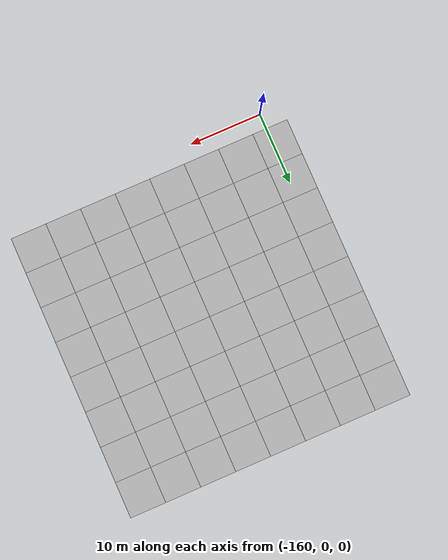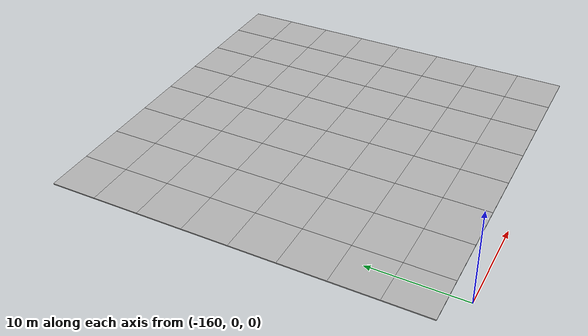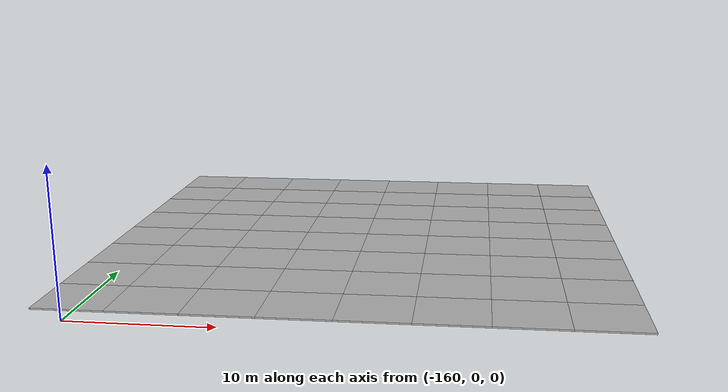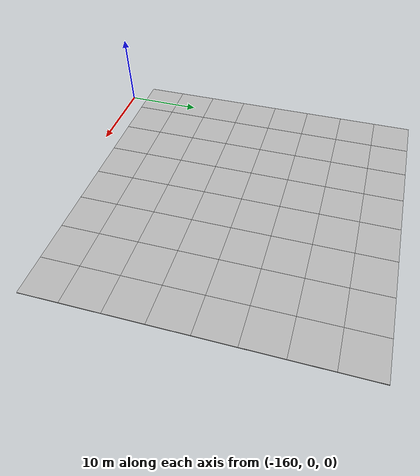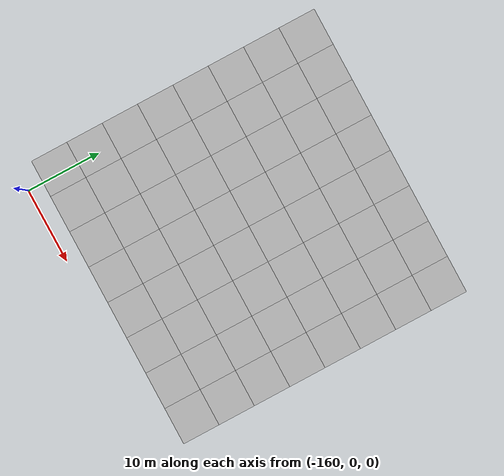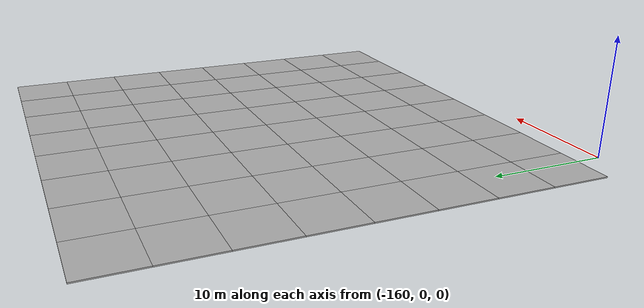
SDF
<sdf version="1.7">
 <world name="default">
  <model name="mud_plane_80x80_3">
   <model name="mud_plane_40x40_2">
    <model name="mud_plane_20x20">
     <model name="mud_plane">
      <static>1</static>
      <link name="link">
       <collision name="collision"><geometry><box><size>10 10 0.1</size></box></geometry></collision>
       <visual name="visual_1">
        <pose>-2.5 2.5 -0.05 0 -0 0</pose>
        <cast_shadows>0</cast_shadows>
        <geometry><box><size>5 5 0.1</size></box></geometry>
        <material>
         <script>
          <uri>model://mud_plane/materials/scripts</uri>
          <uri>model://mud_plane/materials/textures</uri>
          <name>vrc/mud</name>
         </script>
        </material>
       </visual>
       <visual name="visual_2">
        <pose>2.5 2.5 -0.05 0 -0 0</pose>
        <cast_shadows>0</cast_shadows>
        <geometry><box><size>5 5 0.1</size></box></geometry>
        <material>
         <script>
          <uri>model://mud_plane/materials/scripts</uri>
          <uri>model://mud_plane/materials/textures</uri>
          <name>vrc/mud</name>
         </script>
        </material>
       </visual>
       <visual name="visual_3">
        <pose>2.5 -2.5 -0.05 0 -0 0</pose>
        <cast_shadows>0</cast_shadows>
        <geometry><box><size>5 5 0.1</size></box></geometry>
        <material>
         <script>
          <uri>model://mud_plane/materials/scripts</uri>
          <uri>model://mud_plane/materials/textures</uri>
          <name>vrc/mud</name>
         </script>
        </material>
       </visual>
       <visual name="visual_4">
        <pose>-2.5 -2.5 -0.05 0 -0 0</pose>
        <cast_shadows>0</cast_shadows>
        <geometry><box><size>5 5 0.1</size></box></geometry>
        <material>
         <script>
          <uri>model://mud_plane/materials/scripts</uri>
          <uri>model://mud_plane/materials/textures</uri>
          <name>vrc/mud</name>
         </script>
        </material>
       </visual>
      </link>
      <pose>-4.99986 -4.99991 0 0 -0 0</pose>
     </model>
     <model name="mud_plane_0">
      <static>1</static>
      <link name="link">
       <collision name="collision"><geometry><box><size>10 10 0.1</size></box></geometry></collision>
       <visual name="visual_1">
        <pose>-2.5 2.5 -0.05 0 -0 0</pose>
        <cast_shadows>0</cast_shadows>
        <geometry><box><size>5 5 0.1</size></box></geometry>
        <material>
         <script>
          <uri>model://mud_plane/materials/scripts</uri>
          <uri>model://mud_plane/materials/textures</uri>
          <name>vrc/mud</name>
         </script>
        </material>
       </visual>
       <visual name="visual_2">
        <pose>2.5 2.5 -0.05 0 -0 0</pose>
        <cast_shadows>0</cast_shadows>
        <geometry><box><size>5 5 0.1</size></box></geometry>
        <material>
         <script>
          <uri>model://mud_plane/materials/scripts</uri>
          <uri>model://mud_plane/materials/textures</uri>
          <name>vrc/mud</name>
         </script>
        </material>
       </visual>
       <visual name="visual_3">
        <pose>2.5 -2.5 -0.05 0 -0 0</pose>
        <cast_shadows>0</cast_shadows>
        <geometry><box><size>5 5 0.1</size></box></geometry>
        <material>
         <script>
          <uri>model://mud_plane/materials/scripts</uri>
          <uri>model://mud_plane/materials/textures</uri>
          <name>vrc/mud</name>
         </script>
        </material>
       </visual>
       <visual name="visual_4">
        <pose>-2.5 -2.5 -0.05 0 -0 0</pose>
        <cast_shadows>0</cast_shadows>
        <geometry><box><size>5 5 0.1</size></box></geometry>
        <material>
         <script>
          <uri>model://mud_plane/materials/scripts</uri>
          <uri>model://mud_plane/materials/textures</uri>
          <name>vrc/mud</name>
         </script>
        </material>
       </visual>
      </link>
      <pose>-4.99946 4.99954 0 0 -0 0</pose>
     </model>
     <model name="mud_plane_1">
      <static>1</static>
      <link name="link">
       <collision name="collision"><geometry><box><size>10 10 0.1</size></box></geometry></collision>
       <visual name="visual_1">
        <pose>-2.5 2.5 -0.05 0 -0 0</pose>
        <cast_shadows>0</cast_shadows>
        <geometry><box><size>5 5 0.1</size></box></geometry>
        <material>
         <script>
          <uri>model://mud_plane/materials/scripts</uri>
          <uri>model://mud_plane/materials/textures</uri>
          <name>vrc/mud</name>
         </script>
        </material>
       </visual>
       <visual name="visual_2">
        <pose>2.5 2.5 -0.05 0 -0 0</pose>
        <cast_shadows>0</cast_shadows>
        <geometry><box><size>5 5 0.1</size></box></geometry>
        <material>
         <script>
          <uri>model://mud_plane/materials/scripts</uri>
          <uri>model://mud_plane/materials/textures</uri>
          <name>vrc/mud</name>
         </script>
        </material>
       </visual>
       <visual name="visual_3">
        <pose>2.5 -2.5 -0.05 0 -0 0</pose>
        <cast_shadows>0</cast_shadows>
        <geometry><box><size>5 5 0.1</size></box></geometry>
        <material>
         <script>
          <uri>model://mud_plane/materials/scripts</uri>
          <uri>model://mud_plane/materials/textures</uri>
          <name>vrc/mud</name>
         </script>
        </material>
       </visual>
       <visual name="visual_4">
        <pose>-2.5 -2.5 -0.05 0 -0 0</pose>
        <cast_shadows>0</cast_shadows>
        <geometry><box><size>5 5 0.1</size></box></geometry>
        <material>
         <script>
          <uri>model://mud_plane/materials/scripts</uri>
          <uri>model://mud_plane/materials/textures</uri>
          <name>vrc/mud</name>
         </script>
        </material>
       </visual>
      </link>
      <pose>4.99964 -4.99949 0 0 -0 0</pose>
     </model>
     <model name="mud_plane_2">
      <static>1</static>
      <link name="link">
       <collision name="collision"><geometry><box><size>10 10 0.1</size></box></geometry></collision>
       <visual name="visual_1">
        <pose>-2.5 2.5 -0.05 0 -0 0</pose>
        <cast_shadows>0</cast_shadows>
        <geometry><box><size>5 5 0.1</size></box></geometry>
        <material>
         <script>
          <uri>model://mud_plane/materials/scripts</uri>
          <uri>model://mud_plane/materials/textures</uri>
          <name>vrc/mud</name>
         </script>
        </material>
       </visual>
       <visual name="visual_2">
        <pose>2.5 2.5 -0.05 0 -0 0</pose>
        <cast_shadows>0</cast_shadows>
        <geometry><box><size>5 5 0.1</size></box></geometry>
        <material>
         <script>
          <uri>model://mud_plane/materials/scripts</uri>
          <uri>model://mud_plane/materials/textures</uri>
          <name>vrc/mud</name>
         </script>
        </material>
       </visual>
       <visual name="visual_3">
        <pose>2.5 -2.5 -0.05 0 -0 0</pose>
        <cast_shadows>0</cast_shadows>
        <geometry><box><size>5 5 0.1</size></box></geometry>
        <material>
         <script>
          <uri>model://mud_plane/materials/scripts</uri>
          <uri>model://mud_plane/materials/textures</uri>
          <name>vrc/mud</name>
         </script>
        </material>
       </visual>
       <visual name="visual_4">
        <pose>-2.5 -2.5 -0.05 0 -0 0</pose>
        <cast_shadows>0</cast_shadows>
        <geometry><box><size>5 5 0.1</size></box></geometry>
        <material>
         <script>
          <uri>model://mud_plane/materials/scripts</uri>
          <uri>model://mud_plane/materials/textures</uri>
          <name>vrc/mud</name>
         </script>
        </material>
       </visual>
      </link>
      <pose>4.99967 4.99986 0 0 -0 0</pose>
     </model>
     <static>0</static>
     <pose>-9.99895 9.99843 0 0 -0 0</pose>
    </model>
    <model name="mud_plane_20x20_0">
     <model name="mud_plane">
      <static>1</static>
      <link name="link">
       <collision name="collision"><geometry><box><size>10 10 0.1</size></box></geometry></collision>
       <visual name="visual_1">
        <pose>-2.5 2.5 -0.05 0 -0 0</pose>
        <cast_shadows>0</cast_shadows>
        <geometry><box><size>5 5 0.1</size></box></geometry>
        <material>
         <script>
          <uri>model://mud_plane/materials/scripts</uri>
          <uri>model://mud_plane/materials/textures</uri>
          <name>vrc/mud</name>
         </script>
        </material>
       </visual>
       <visual name="visual_2">
        <pose>2.5 2.5 -0.05 0 -0 0</pose>
        <cast_shadows>0</cast_shadows>
        <geometry><box><size>5 5 0.1</size></box></geometry>
        <material>
         <script>
          <uri>model://mud_plane/materials/scripts</uri>
          <uri>model://mud_plane/materials/textures</uri>
          <name>vrc/mud</name>
         </script>
        </material>
       </visual>
       <visual name="visual_3">
        <pose>2.5 -2.5 -0.05 0 -0 0</pose>
        <cast_shadows>0</cast_shadows>
        <geometry><box><size>5 5 0.1</size></box></geometry>
        <material>
         <script>
          <uri>model://mud_plane/materials/scripts</uri>
          <uri>model://mud_plane/materials/textures</uri>
          <name>vrc/mud</name>
         </script>
        </material>
       </visual>
       <visual name="visual_4">
        <pose>-2.5 -2.5 -0.05 0 -0 0</pose>
        <cast_shadows>0</cast_shadows>
        <geometry><box><size>5 5 0.1</size></box></geometry>
        <material>
         <script>
          <uri>model://mud_plane/materials/scripts</uri>
          <uri>model://mud_plane/materials/textures</uri>
          <name>vrc/mud</name>
         </script>
        </material>
       </visual>
      </link>
      <pose>-4.99986 -4.99991 0 0 -0 0</pose>
     </model>
     <model name="mud_plane_0">
      <static>1</static>
      <link name="link">
       <collision name="collision"><geometry><box><size>10 10 0.1</size></box></geometry></collision>
       <visual name="visual_1">
        <pose>-2.5 2.5 -0.05 0 -0 0</pose>
        <cast_shadows>0</cast_shadows>
        <geometry><box><size>5 5 0.1</size></box></geometry>
        <material>
         <script>
          <uri>model://mud_plane/materials/scripts</uri>
          <uri>model://mud_plane/materials/textures</uri>
          <name>vrc/mud</name>
         </script>
        </material>
       </visual>
       <visual name="visual_2">
        <pose>2.5 2.5 -0.05 0 -0 0</pose>
        <cast_shadows>0</cast_shadows>
        <geometry><box><size>5 5 0.1</size></box></geometry>
        <material>
         <script>
          <uri>model://mud_plane/materials/scripts</uri>
          <uri>model://mud_plane/materials/textures</uri>
          <name>vrc/mud</name>
         </script>
        </material>
       </visual>
       <visual name="visual_3">
        <pose>2.5 -2.5 -0.05 0 -0 0</pose>
        <cast_shadows>0</cast_shadows>
        <geometry><box><size>5 5 0.1</size></box></geometry>
        <material>
         <script>
          <uri>model://mud_plane/materials/scripts</uri>
          <uri>model://mud_plane/materials/textures</uri>
          <name>vrc/mud</name>
         </script>
        </material>
       </visual>
       <visual name="visual_4">
        <pose>-2.5 -2.5 -0.05 0 -0 0</pose>
        <cast_shadows>0</cast_shadows>
        <geometry><box><size>5 5 0.1</size></box></geometry>
        <material>
         <script>
          <uri>model://mud_plane/materials/scripts</uri>
          <uri>model://mud_plane/materials/textures</uri>
          <name>vrc/mud</name>
         </script>
        </material>
       </visual>
      </link>
      <pose>-4.99946 4.99954 0 0 -0 0</pose>
     </model>
     <model name="mud_plane_1">
      <static>1</static>
      <link name="link">
       <collision name="collision"><geometry><box><size>10 10 0.1</size></box></geometry></collision>
       <visual name="visual_1">
        <pose>-2.5 2.5 -0.05 0 -0 0</pose>
        <cast_shadows>0</cast_shadows>
        <geometry><box><size>5 5 0.1</size></box></geometry>
        <material>
         <script>
          <uri>model://mud_plane/materials/scripts</uri>
          <uri>model://mud_plane/materials/textures</uri>
          <name>vrc/mud</name>
         </script>
        </material>
       </visual>
       <visual name="visual_2">
        <pose>2.5 2.5 -0.05 0 -0 0</pose>
        <cast_shadows>0</cast_shadows>
        <geometry><box><size>5 5 0.1</size></box></geometry>
        <material>
         <script>
          <uri>model://mud_plane/materials/scripts</uri>
          <uri>model://mud_plane/materials/textures</uri>
          <name>vrc/mud</name>
         </script>
        </material>
       </visual>
       <visual name="visual_3">
        <pose>2.5 -2.5 -0.05 0 -0 0</pose>
        <cast_shadows>0</cast_shadows>
        <geometry><box><size>5 5 0.1</size></box></geometry>
        <material>
         <script>
          <uri>model://mud_plane/materials/scripts</uri>
          <uri>model://mud_plane/materials/textures</uri>
          <name>vrc/mud</name>
         </script>
        </material>
       </visual>
       <visual name="visual_4">
        <pose>-2.5 -2.5 -0.05 0 -0 0</pose>
        <cast_shadows>0</cast_shadows>
        <geometry><box><size>5 5 0.1</size></box></geometry>
        <material>
         <script>
          <uri>model://mud_plane/materials/scripts</uri>
          <uri>model://mud_plane/materials/textures</uri>
          <name>vrc/mud</name>
         </script>
        </material>
       </visual>
      </link>
      <pose>4.99964 -4.99949 0 0 -0 0</pose>
     </model>
     <model name="mud_plane_2">
      <static>1</static>
      <link name="link">
       <collision name="collision"><geometry><box><size>10 10 0.1</size></box></geometry></collision>
       <visual name="visual_1">
        <pose>-2.5 2.5 -0.05 0 -0 0</pose>
        <cast_shadows>0</cast_shadows>
        <geometry><box><size>5 5 0.1</size></box></geometry>
        <material>
         <script>
          <uri>model://mud_plane/materials/scripts</uri>
          <uri>model://mud_plane/materials/textures</uri>
          <name>vrc/mud</name>
         </script>
        </material>
       </visual>
       <visual name="visual_2">
        <pose>2.5 2.5 -0.05 0 -0 0</pose>
        <cast_shadows>0</cast_shadows>
        <geometry><box><size>5 5 0.1</size></box></geometry>
        <material>
         <script>
          <uri>model://mud_plane/materials/scripts</uri>
          <uri>model://mud_plane/materials/textures</uri>
          <name>vrc/mud</name>
         </script>
        </material>
       </visual>
       <visual name="visual_3">
        <pose>2.5 -2.5 -0.05 0 -0 0</pose>
        <cast_shadows>0</cast_shadows>
        <geometry><box><size>5 5 0.1</size></box></geometry>
        <material>
         <script>
          <uri>model://mud_plane/materials/scripts</uri>
          <uri>model://mud_plane/materials/textures</uri>
          <name>vrc/mud</name>
         </script>
        </material>
       </visual>
       <visual name="visual_4">
        <pose>-2.5 -2.5 -0.05 0 -0 0</pose>
        <cast_shadows>0</cast_shadows>
        <geometry><box><size>5 5 0.1</size></box></geometry>
        <material>
         <script>
          <uri>model://mud_plane/materials/scripts</uri>
          <uri>model://mud_plane/materials/textures</uri>
          <name>vrc/mud</name>
         </script>
        </material>
       </visual>
      </link>
      <pose>4.99967 4.99986 0 0 -0 0</pose>
     </model>
     <static>0</static>
     <pose>9.99933 9.9997 0 0 -0 0</pose>
    </model>
    <model name="mud_plane_20x20_1">
     <model name="mud_plane">
      <static>1</static>
      <link name="link">
       <collision name="collision"><geometry><box><size>10 10 0.1</size></box></geometry></collision>
       <visual name="visual_1">
        <pose>-2.5 2.5 -0.05 0 -0 0</pose>
        <cast_shadows>0</cast_shadows>
        <geometry><box><size>5 5 0.1</size></box></geometry>
        <material>
         <script>
          <uri>model://mud_plane/materials/scripts</uri>
          <uri>model://mud_plane/materials/textures</uri>
          <name>vrc/mud</name>
         </script>
        </material>
       </visual>
       <visual name="visual_2">
        <pose>2.5 2.5 -0.05 0 -0 0</pose>
        <cast_shadows>0</cast_shadows>
        <geometry><box><size>5 5 0.1</size></box></geometry>
        <material>
         <script>
          <uri>model://mud_plane/materials/scripts</uri>
          <uri>model://mud_plane/materials/textures</uri>
          <name>vrc/mud</name>
         </script>
        </material>
       </visual>
       <visual name="visual_3">
        <pose>2.5 -2.5 -0.05 0 -0 0</pose>
        <cast_shadows>0</cast_shadows>
        <geometry><box><size>5 5 0.1</size></box></geometry>
        <material>
         <script>
          <uri>model://mud_plane/materials/scripts</uri>
          <uri>model://mud_plane/materials/textures</uri>
          <name>vrc/mud</name>
         </script>
        </material>
       </visual>
       <visual name="visual_4">
        <pose>-2.5 -2.5 -0.05 0 -0 0</pose>
        <cast_shadows>0</cast_shadows>
        <geometry><box><size>5 5 0.1</size></box></geometry>
        <material>
         <script>
          <uri>model://mud_plane/materials/scripts</uri>
          <uri>model://mud_plane/materials/textures</uri>
          <name>vrc/mud</name>
         </script>
        </material>
       </visual>
      </link>
      <pose>-4.99986 -4.99991 0 0 -0 0</pose>
     </model>
     <model name="mud_plane_0">
      <static>1</static>
      <link name="link">
       <collision name="collision"><geometry><box><size>10 10 0.1</size></box></geometry></collision>
       <visual name="visual_1">
        <pose>-2.5 2.5 -0.05 0 -0 0</pose>
        <cast_shadows>0</cast_shadows>
        <geometry><box><size>5 5 0.1</size></box></geometry>
        <material>
         <script>
          <uri>model://mud_plane/materials/scripts</uri>
          <uri>model://mud_plane/materials/textures</uri>
          <name>vrc/mud</name>
         </script>
        </material>
       </visual>
       <visual name="visual_2">
        <pose>2.5 2.5 -0.05 0 -0 0</pose>
        <cast_shadows>0</cast_shadows>
        <geometry><box><size>5 5 0.1</size></box></geometry>
        <material>
         <script>
          <uri>model://mud_plane/materials/scripts</uri>
          <uri>model://mud_plane/materials/textures</uri>
          <name>vrc/mud</name>
         </script>
        </material>
       </visual>
       <visual name="visual_3">
        <pose>2.5 -2.5 -0.05 0 -0 0</pose>
        <cast_shadows>0</cast_shadows>
        <geometry><box><size>5 5 0.1</size></box></geometry>
        <material>
         <script>
          <uri>model://mud_plane/materials/scripts</uri>
          <uri>model://mud_plane/materials/textures</uri>
          <name>vrc/mud</name>
         </script>
        </material>
       </visual>
       <visual name="visual_4">
        <pose>-2.5 -2.5 -0.05 0 -0 0</pose>
        <cast_shadows>0</cast_shadows>
        <geometry><box><size>5 5 0.1</size></box></geometry>
        <material>
         <script>
          <uri>model://mud_plane/materials/scripts</uri>
          <uri>model://mud_plane/materials/textures</uri>
          <name>vrc/mud</name>
         </script>
        </material>
       </visual>
      </link>
      <pose>-4.99946 4.99954 0 0 -0 0</pose>
     </model>
     <model name="mud_plane_1">
      <static>1</static>
      <link name="link">
       <collision name="collision"><geometry><box><size>10 10 0.1</size></box></geometry></collision>
       <visual name="visual_1">
        <pose>-2.5 2.5 -0.05 0 -0 0</pose>
        <cast_shadows>0</cast_shadows>
        <geometry><box><size>5 5 0.1</size></box></geometry>
        <material>
         <script>
          <uri>model://mud_plane/materials/scripts</uri>
          <uri>model://mud_plane/materials/textures</uri>
          <name>vrc/mud</name>
         </script>
        </material>
       </visual>
       <visual name="visual_2">
        <pose>2.5 2.5 -0.05 0 -0 0</pose>
        <cast_shadows>0</cast_shadows>
        <geometry><box><size>5 5 0.1</size></box></geometry>
        <material>
         <script>
          <uri>model://mud_plane/materials/scripts</uri>
          <uri>model://mud_plane/materials/textures</uri>
          <name>vrc/mud</name>
         </script>
        </material>
       </visual>
       <visual name="visual_3">
        <pose>2.5 -2.5 -0.05 0 -0 0</pose>
        <cast_shadows>0</cast_shadows>
        <geometry><box><size>5 5 0.1</size></box></geometry>
        <material>
         <script>
          <uri>model://mud_plane/materials/scripts</uri>
          <uri>model://mud_plane/materials/textures</uri>
          <name>vrc/mud</name>
         </script>
        </material>
       </visual>
       <visual name="visual_4">
        <pose>-2.5 -2.5 -0.05 0 -0 0</pose>
        <cast_shadows>0</cast_shadows>
        <geometry><box><size>5 5 0.1</size></box></geometry>
        <material>
         <script>
          <uri>model://mud_plane/materials/scripts</uri>
          <uri>model://mud_plane/materials/textures</uri>
          <name>vrc/mud</name>
         </script>
        </material>
       </visual>
      </link>
      <pose>4.99964 -4.99949 0 0 -0 0</pose>
     </model>
     <model name="mud_plane_2">
      <static>1</static>
      <link name="link">
       <collision name="collision"><geometry><box><size>10 10 0.1</size></box></geometry></collision>
       <visual name="visual_1">
        <pose>-2.5 2.5 -0.05 0 -0 0</pose>
        <cast_shadows>0</cast_shadows>
        <geometry><box><size>5 5 0.1</size></box></geometry>
        <material>
         <script>
          <uri>model://mud_plane/materials/scripts</uri>
          <uri>model://mud_plane/materials/textures</uri>
          <name>vrc/mud</name>
         </script>
        </material>
       </visual>
       <visual name="visual_2">
        <pose>2.5 2.5 -0.05 0 -0 0</pose>
        <cast_shadows>0</cast_shadows>
        <geometry><box><size>5 5 0.1</size></box></geometry>
        <material>
         <script>
          <uri>model://mud_plane/materials/scripts</uri>
          <uri>model://mud_plane/materials/textures</uri>
          <name>vrc/mud</name>
         </script>
        </material>
       </visual>
       <visual name="visual_3">
        <pose>2.5 -2.5 -0.05 0 -0 0</pose>
        <cast_shadows>0</cast_shadows>
        <geometry><box><size>5 5 0.1</size></box></geometry>
        <material>
         <script>
          <uri>model://mud_plane/materials/scripts</uri>
          <uri>model://mud_plane/materials/textures</uri>
          <name>vrc/mud</name>
         </script>
        </material>
       </visual>
       <visual name="visual_4">
        <pose>-2.5 -2.5 -0.05 0 -0 0</pose>
        <cast_shadows>0</cast_shadows>
        <geometry><box><size>5 5 0.1</size></box></geometry>
        <material>
         <script>
          <uri>model://mud_plane/materials/scripts</uri>
          <uri>model://mud_plane/materials/textures</uri>
          <name>vrc/mud</name>
         </script>
        </material>
       </visual>
      </link>
      <pose>4.99967 4.99986 0 0 -0 0</pose>
     </model>
     <static>0</static>
     <pose>9.9993 -9.99877 0 0 -0 0</pose>
    </model>
    <model name="mud_plane_20x20_2">
     <model name="mud_plane">
      <static>1</static>
      <link name="link">
       <collision name="collision"><geometry><box><size>10 10 0.1</size></box></geometry></collision>
       <visual name="visual_1">
        <pose>-2.5 2.5 -0.05 0 -0 0</pose>
        <cast_shadows>0</cast_shadows>
        <geometry><box><size>5 5 0.1</size></box></geometry>
        <material>
         <script>
          <uri>model://mud_plane/materials/scripts</uri>
          <uri>model://mud_plane/materials/textures</uri>
          <name>vrc/mud</name>
         </script>
        </material>
       </visual>
       <visual name="visual_2">
        <pose>2.5 2.5 -0.05 0 -0 0</pose>
        <cast_shadows>0</cast_shadows>
        <geometry><box><size>5 5 0.1</size></box></geometry>
        <material>
         <script>
          <uri>model://mud_plane/materials/scripts</uri>
          <uri>model://mud_plane/materials/textures</uri>
          <name>vrc/mud</name>
         </script>
        </material>
       </visual>
       <visual name="visual_3">
        <pose>2.5 -2.5 -0.05 0 -0 0</pose>
        <cast_shadows>0</cast_shadows>
        <geometry><box><size>5 5 0.1</size></box></geometry>
        <material>
         <script>
          <uri>model://mud_plane/materials/scripts</uri>
          <uri>model://mud_plane/materials/textures</uri>
          <name>vrc/mud</name>
         </script>
        </material>
       </visual>
       <visual name="visual_4">
        <pose>-2.5 -2.5 -0.05 0 -0 0</pose>
        <cast_shadows>0</cast_shadows>
        <geometry><box><size>5 5 0.1</size></box></geometry>
        <material>
         <script>
          <uri>model://mud_plane/materials/scripts</uri>
          <uri>model://mud_plane/materials/textures</uri>
          <name>vrc/mud</name>
         </script>
        </material>
       </visual>
      </link>
      <pose>-4.99986 -4.99991 0 0 -0 0</pose>
     </model>
     <model name="mud_plane_0">
      <static>1</static>
      <link name="link">
       <collision name="collision"><geometry><box><size>10 10 0.1</size></box></geometry></collision>
       <visual name="visual_1">
        <pose>-2.5 2.5 -0.05 0 -0 0</pose>
        <cast_shadows>0</cast_shadows>
        <geometry><box><size>5 5 0.1</size></box></geometry>
        <material>
         <script>
          <uri>model://mud_plane/materials/scripts</uri>
          <uri>model://mud_plane/materials/textures</uri>
          <name>vrc/mud</name>
         </script>
        </material>
       </visual>
       <visual name="visual_2">
        <pose>2.5 2.5 -0.05 0 -0 0</pose>
        <cast_shadows>0</cast_shadows>
        <geometry><box><size>5 5 0.1</size></box></geometry>
        <material>
         <script>
          <uri>model://mud_plane/materials/scripts</uri>
          <uri>model://mud_plane/materials/textures</uri>
          <name>vrc/mud</name>
         </script>
        </material>
       </visual>
       <visual name="visual_3">
        <pose>2.5 -2.5 -0.05 0 -0 0</pose>
        <cast_shadows>0</cast_shadows>
        <geometry><box><size>5 5 0.1</size></box></geometry>
        <material>
         <script>
          <uri>model://mud_plane/materials/scripts</uri>
          <uri>model://mud_plane/materials/textures</uri>
          <name>vrc/mud</name>
         </script>
        </material>
       </visual>
       <visual name="visual_4">
        <pose>-2.5 -2.5 -0.05 0 -0 0</pose>
        <cast_shadows>0</cast_shadows>
        <geometry><box><size>5 5 0.1</size></box></geometry>
        <material>
         <script>
          <uri>model://mud_plane/materials/scripts</uri>
          <uri>model://mud_plane/materials/textures</uri>
          <name>vrc/mud</name>
         </script>
        </material>
       </visual>
      </link>
      <pose>-4.99946 4.99954 0 0 -0 0</pose>
     </model>
     <model name="mud_plane_1">
      <static>1</static>
      <link name="link">
       <collision name="collision"><geometry><box><size>10 10 0.1</size></box></geometry></collision>
       <visual name="visual_1">
        <pose>-2.5 2.5 -0.05 0 -0 0</pose>
        <cast_shadows>0</cast_shadows>
        <geometry><box><size>5 5 0.1</size></box></geometry>
        <material>
         <script>
          <uri>model://mud_plane/materials/scripts</uri>
          <uri>model://mud_plane/materials/textures</uri>
          <name>vrc/mud</name>
         </script>
        </material>
       </visual>
       <visual name="visual_2">
        <pose>2.5 2.5 -0.05 0 -0 0</pose>
        <cast_shadows>0</cast_shadows>
        <geometry><box><size>5 5 0.1</size></box></geometry>
        <material>
         <script>
          <uri>model://mud_plane/materials/scripts</uri>
          <uri>model://mud_plane/materials/textures</uri>
          <name>vrc/mud</name>
         </script>
        </material>
       </visual>
       <visual name="visual_3">
        <pose>2.5 -2.5 -0.05 0 -0 0</pose>
        <cast_shadows>0</cast_shadows>
        <geometry><box><size>5 5 0.1</size></box></geometry>
        <material>
         <script>
          <uri>model://mud_plane/materials/scripts</uri>
          <uri>model://mud_plane/materials/textures</uri>
          <name>vrc/mud</name>
         </script>
        </material>
       </visual>
       <visual name="visual_4">
        <pose>-2.5 -2.5 -0.05 0 -0 0</pose>
        <cast_shadows>0</cast_shadows>
        <geometry><box><size>5 5 0.1</size></box></geometry>
        <material>
         <script>
          <uri>model://mud_plane/materials/scripts</uri>
          <uri>model://mud_plane/materials/textures</uri>
          <name>vrc/mud</name>
         </script>
        </material>
       </visual>
      </link>
      <pose>4.99964 -4.99949 0 0 -0 0</pose>
     </model>
     <model name="mud_plane_2">
      <static>1</static>
      <link name="link">
       <collision name="collision"><geometry><box><size>10 10 0.1</size></box></geometry></collision>
       <visual name="visual_1">
        <pose>-2.5 2.5 -0.05 0 -0 0</pose>
        <cast_shadows>0</cast_shadows>
        <geometry><box><size>5 5 0.1</size></box></geometry>
        <material>
         <script>
          <uri>model://mud_plane/materials/scripts</uri>
          <uri>model://mud_plane/materials/textures</uri>
          <name>vrc/mud</name>
         </script>
        </material>
       </visual>
       <visual name="visual_2">
        <pose>2.5 2.5 -0.05 0 -0 0</pose>
        <cast_shadows>0</cast_shadows>
        <geometry><box><size>5 5 0.1</size></box></geometry>
        <material>
         <script>
          <uri>model://mud_plane/materials/scripts</uri>
          <uri>model://mud_plane/materials/textures</uri>
          <name>vrc/mud</name>
         </script>
        </material>
       </visual>
       <visual name="visual_3">
        <pose>2.5 -2.5 -0.05 0 -0 0</pose>
        <cast_shadows>0</cast_shadows>
        <geometry><box><size>5 5 0.1</size></box></geometry>
        <material>
         <script>
          <uri>model://mud_plane/materials/scripts</uri>
          <uri>model://mud_plane/materials/textures</uri>
          <name>vrc/mud</name>
         </script>
        </material>
       </visual>
       <visual name="visual_4">
        <pose>-2.5 -2.5 -0.05 0 -0 0</pose>
        <cast_shadows>0</cast_shadows>
        <geometry><box><size>5 5 0.1</size></box></geometry>
        <material>
         <script>
          <uri>model://mud_plane/materials/scripts</uri>
          <uri>model://mud_plane/materials/textures</uri>
          <name>vrc/mud</name>
         </script>
        </material>
       </visual>
      </link>
      <pose>4.99967 4.99986 0 0 -0 0</pose>
     </model>
     <static>0</static>
     <pose>-9.99969 -9.99935 0 0 -0 0</pose>
    </model>
    <static>0</static>
    <pose>-19.9989 -19.9993 0 0 -0 0</pose>
   </model>
   <static>0</static>
   <pose>-123.082 42.0534 0 0 -0 0</pose>
  </model>
 </world>
</sdf>
